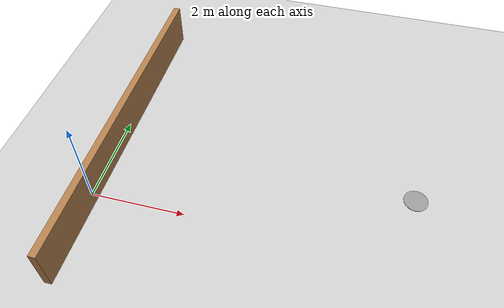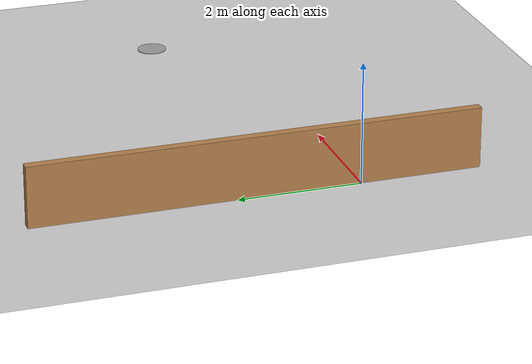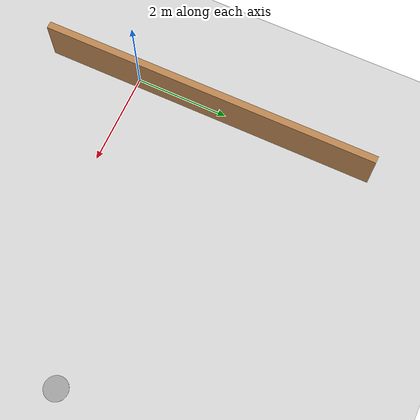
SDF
<sdf version="1.6">
 <world name="default">
  <light name="sun" type="directional">
   <pose>0 0 10 0 -0 0</pose>
   <diffuse>0.8 0.8 0.8 1</diffuse>
   <specular>0.1 0.1 0.1 1</specular>
   <attenuation>
    <range>1000</range>
    <constant>0.9</constant>
    <linear>0.01</linear>
    <quadratic>0.001</quadratic>
   </attenuation>
   <direction>-0.5 0.5 -1</direction>
  </light>
  <model name="ground_plane">
   <static>1</static>
   <link name="link">
    <collision name="collision">
     <geometry><plane><normal>0 0 1</normal><size>100 100</size></plane></geometry>
     <surface><friction><ode><mu>100</mu><mu2>50</mu2></ode></friction></surface>
    </collision>
    <visual name="visual">
     <cast_shadows>0</cast_shadows>
     <geometry><plane><normal>0 0 1</normal><size>100 100</size></plane></geometry>
     <material>
      <script><uri>file://media/materials/scripts/gazebo.material</uri><name>Gazebo/Grey</name></script>
     </material>
    </visual>
   </link>
  </model>
  <gravity>0 0 -9.8</gravity>
  <magnetic_field>6e-06 2.3e-05 -4.2e-05</magnetic_field>
  <atmosphere type="adiabatic"/>
  <physics name="default_physics" default="0" type="ode">
   <max_step_size>0.001</max_step_size>
   <real_time_factor>1</real_time_factor>
   <real_time_update_rate>1000</real_time_update_rate>
  </physics>
  <scene><ambient>0.4 0.4 0.4 1</ambient><background>0.7 0.7 0.7 1</background><shadows>1</shadows></scene>
  <spherical_coordinates>
   <surface_model>EARTH_WGS84</surface_model>
   <latitude_deg>0</latitude_deg>
   <longitude_deg>0</longitude_deg>
   <elevation>0</elevation>
   <heading_deg>0</heading_deg>
  </spherical_coordinates>
  <model name="circle_05_white">
   <link name="link">
    <pose>0 -0.014166 0 0 -0 0</pose>
    <inertial>
     <mass>1</mass>
     <inertia><ixx>0.145833</ixx><ixy>0</ixy><ixz>0</ixz><iyy>0.145833</iyy><iyz>0</iyz><izz>0.125</izz></inertia>
    </inertial>
    <visual name="ModelPreview_1::link::visual_1">
     <geometry><cylinder><radius>0.25</radius><length>0.001</length></cylinder></geometry>
     <material>
      <script><name>Gazebo/Grey</name><uri>file://media/materials/scripts/gazebo.material</uri></script>
      <ambient>0.3 0.3 0.3 1</ambient>
      <diffuse>0.7 0.7 0.7 1</diffuse>
      <specular>0.01 0.01 0.01 1</specular>
      <emissive>1 1 1 0.9</emissive>
      <shader type="vertex"><normal_map>__default__</normal_map></shader>
     </material>
    </visual>
    <visual name="visual">
     <geometry><cylinder><radius>0.25</radius><length>0.01</length></cylinder></geometry>
     <material>
      <script><name>Gazebo/Grey</name><uri>file://media/materials/scripts/gazebo.material</uri></script>
      <ambient>0.3 0.3 0.3 1</ambient>
      <diffuse>0.7 0.7 0.7 1</diffuse>
      <specular>0.01 0.01 0.01 1</specular>
      <emissive>1 1 1 0.9</emissive>
      <shader type="vertex"><normal_map>__default__</normal_map></shader>
     </material>
    </visual>
    <visual name="ModelPreview_1::link::visual_2">
     <geometry><cylinder><radius>0.25</radius><length>0.01</length></cylinder></geometry>
     <material>
      <script><name>Gazebo/Grey</name><uri>file://media/materials/scripts/gazebo.material</uri></script>
      <ambient>0.3 0.3 0.3 1</ambient>
      <diffuse>0.7 0.7 0.7 1</diffuse>
      <specular>0.01 0.01 0.01 1</specular>
      <emissive>0 0.8 0.8 0</emissive>
      <shader type="vertex"><normal_map>__default__</normal_map></shader>
     </material>
    </visual>
    <collision name="collision">
     <geometry><cylinder><radius>0.25</radius><length>1e-05</length></cylinder></geometry>
     <surface>
      <friction>
       <ode><mu>1</mu><mu2>1</mu2><fdir1>0 0 0</fdir1><slip1>0</slip1><slip2>0</slip2></ode>
       <torsional>
        <coefficient>1</coefficient>
        <patch_radius>0</patch_radius>
        <surface_radius>0</surface_radius>
        <use_patch_radius>1</use_patch_radius>
        <ode><slip>0</slip></ode>
       </torsional>
      </friction>
      <bounce><restitution_coefficient>0</restitution_coefficient><threshold>1e+06</threshold></bounce>
      <contact>
       <collide_without_contact>0</collide_without_contact>
       <collide_without_contact_bitmask>1</collide_without_contact_bitmask>
       <collide_bitmask>1</collide_bitmask>
       <ode>
        <soft_cfm>0</soft_cfm>
        <soft_erp>0.2</soft_erp>
        <kp>1e+13</kp>
        <kd>1</kd>
        <max_vel>0.01</max_vel>
        <min_depth>0</min_depth>
       </ode>
       <bullet>
        <split_impulse>1</split_impulse>
        <split_impulse_penetration_threshold>-0.01</split_impulse_penetration_threshold>
        <soft_cfm>0</soft_cfm>
        <soft_erp>0.2</soft_erp>
        <kp>1e+13</kp>
        <kd>1</kd>
       </bullet>
      </contact>
     </surface>
    </collision>
   </link>
   <static>1</static>
   <pose>6.5 1.5 0 0 -0 0</pose>
  </model>
  <model name="wall_1">
   <pose>0.082747 1.64525 0 0 -0 0</pose>
   <link name="Wall_5">
    <collision name="Wall_5_Collision">
     <geometry><box><size>7.25 0.15 1</size></box></geometry>
     <pose>0 0 0.5 0 -0 0</pose>
    </collision>
    <visual name="Wall_5_Visual">
     <pose>0 0 0.5 0 -0 0</pose>
     <geometry><box><size>7.25 0.15 1</size></box></geometry>
     <material>
      <script><uri>file://media/materials/scripts/gazebo.material</uri><name>Gazebo/Wood</name></script>
      <ambient>1 1 1 1</ambient>
     </material>
    </visual>
    <pose>0 0 0 0 -0 1.5708</pose>
   </link>
   <static>1</static>
  </model>
 </world>
</sdf>
